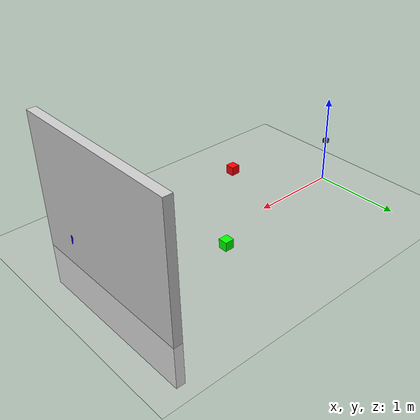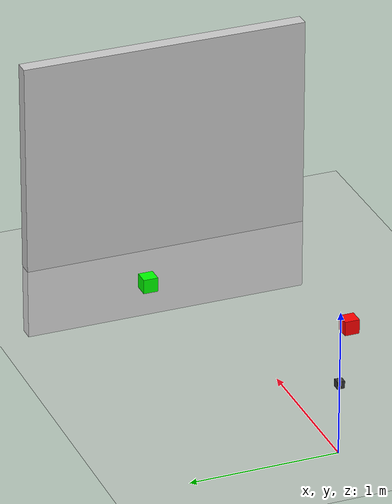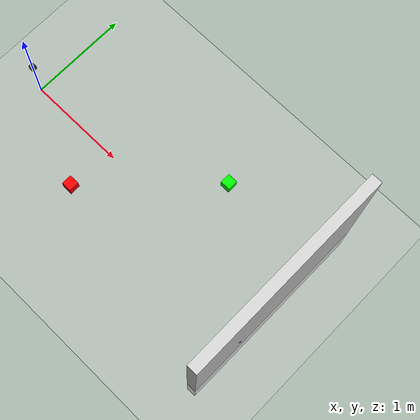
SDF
<?xml version="1.0" ?>
<sdf version="1.6">
  <world name="camera_depth_accuracy">

    <!-- Include sun and ground plane -->
    <include>
      <uri>model://sun</uri>
    </include>
    <include>
      <uri>model://ground_plane</uri>
    </include>

    <!-- Camera mounting point (the sensor will be inserted here) -->
    <model name="camera_mount">
      <static>true</static>
      <link name="link">
        <pose>0 0 0.5 0 0 0</pose>  <!-- Camera at 0.5m height, facing +X -->
        <visual name="visual">
          <geometry>
            <box>
              <size>0.05 0.05 0.05</size>
            </box>
          </geometry>
          <material>
            <diffuse>0.2 0.2 0.2 1</diffuse>
          </material>
        </visual>
        <inertial>
          <mass>0.1</mass>
          <inertia>
            <ixx>0.0001</ixx>
            <iyy>0.0001</iyy>
            <izz>0.0001</izz>
          </inertia>
        </inertial>
      </link>
    </model>

    <!-- Target wall at exactly 3.0 meters from camera -->
    <model name="target_wall">
      <static>true</static>
      <link name="link">
        <pose>3.0 0 0.5 0 0 0</pose>  <!-- 3m in +X direction from camera -->
        <visual name="visual">
          <geometry>
            <box>
              <size>0.1 2.0 2.0</size>  <!-- Thin wall, 2x2 meters surface -->
            </box>
          </geometry>
          <material>
            <diffuse>0.8 0.8 0.8 1</diffuse>
            <specular>0.2 0.2 0.2 1</specular>
          </material>
        </visual>
        <collision name="collision">
          <geometry>
            <box>
              <size>0.1 2.0 2.0</size>
            </box>
          </geometry>
        </collision>
      </link>
    </model>

    <!-- Optional: Add some reference markers at different distances -->
    <model name="marker_1m">
      <static>true</static>
      <link name="link">
        <pose>1.0 -0.5 0.3 0 0 0</pose>
        <visual name="visual">
          <geometry>
            <box>
              <size>0.1 0.1 0.1</size>
            </box>
          </geometry>
          <material>
            <diffuse>1 0 0 1</diffuse>  <!-- Red -->
          </material>
        </visual>
      </link>
    </model>

    <model name="marker_2m">
      <static>true</static>
      <link name="link">
        <pose>2.0 0.5 0.3 0 0 0</pose>
        <visual name="visual">
          <geometry>
            <box>
              <size>0.1 0.1 0.1</size>
            </box>
          </geometry>
          <material>
            <diffuse>0 1 0 1</diffuse>  <!-- Green -->
          </material>
        </visual>
      </link>
    </model>

    <model name="marker_3m">
      <static>true</static>
      <link name="link">
        <pose>3.0 -0.5 0.3 0 0 0</pose>
        <visual name="visual">
          <geometry>
            <box>
              <size>0.1 0.1 0.1</size>
            </box>
          </geometry>
          <material>
            <diffuse>0 0 1 1</diffuse>  <!-- Blue -->
          </material>
        </visual>
      </link>
    </model>

    <!-- Add some ambient lighting -->
    <include>
      <uri>model://sun</uri>
      <pose>0 0 10 0 0 0</pose>
    </include>

    <!-- Physics settings -->
    <physics type="ode">
      <real_time_update_rate>1000</real_time_update_rate>
      <max_step_size>0.001</max_step_size>
    </physics>

    <!-- Scene settings -->
    <scene>
      <ambient>0.4 0.4 0.4 1</ambient>
      <background>0.1 0.1 0.1 1</background>
      <shadows>true</shadows>
    </scene>

  </world>
</sdf>
